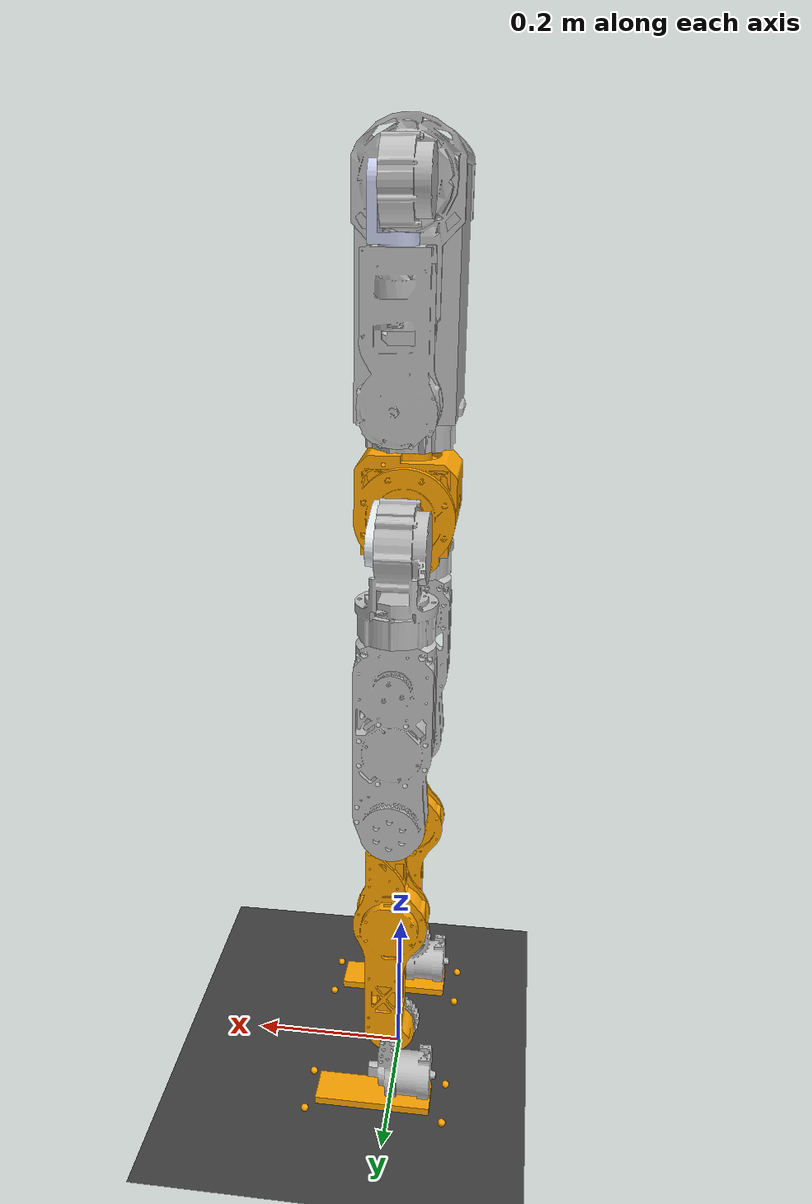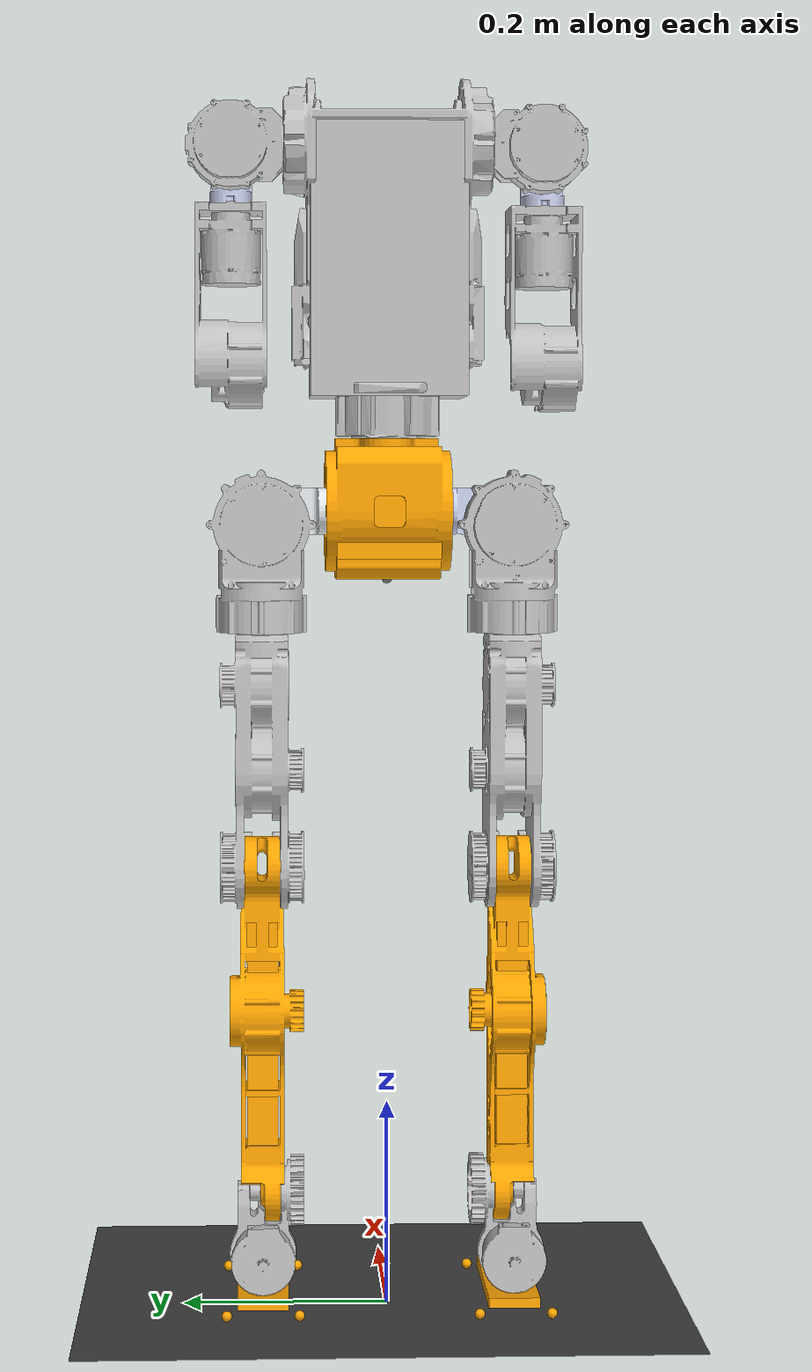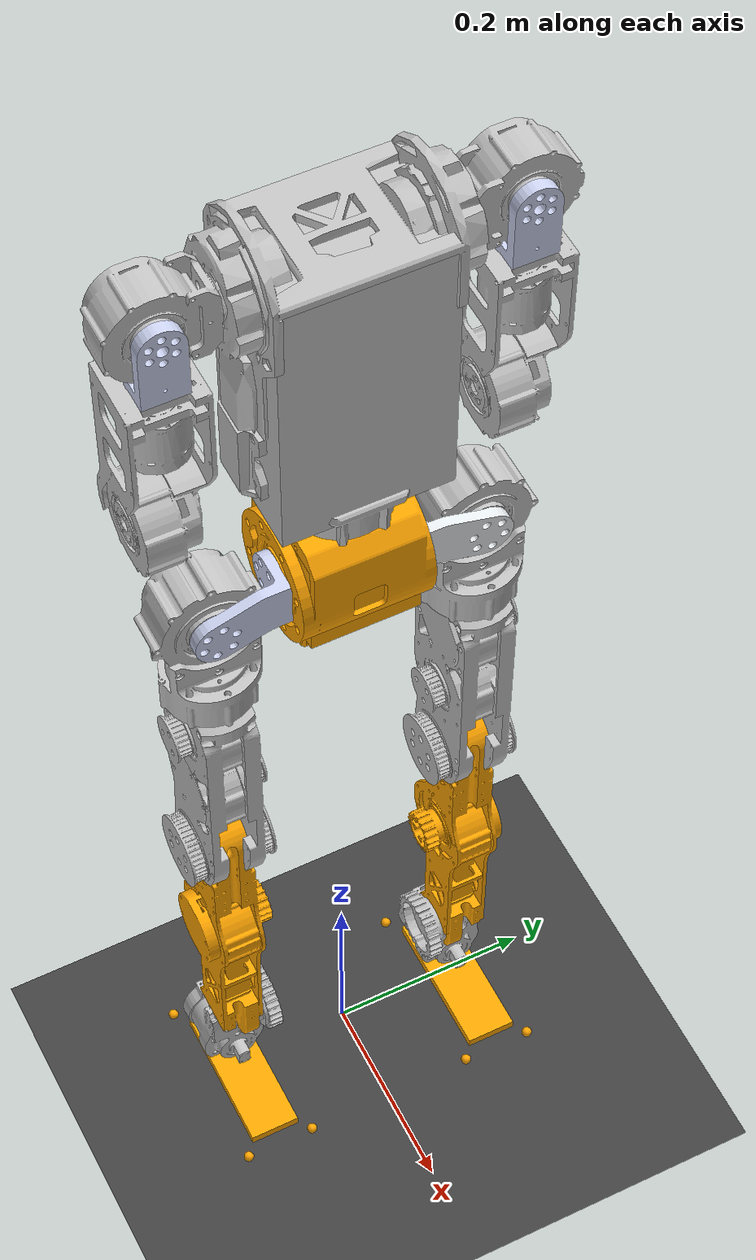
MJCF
<mujoco model="E1_v2">
  <compiler angle="radian" meshdir="../meshes"/>
  <statistic meansize="0.177939" extent="1.9618" center="0.0465088 1.93584e-06 -0.21519"/>
  <default>
    <joint damping="0.01" armature="0.01" frictionloss="0.01"/>
  </default>
  <asset>
    <texture type="skybox" builtin="gradient" width="128" height="128" rgb1="0.4 0.6 0.8" rgb2="0 0 0"/>
    <texture name="plane" type="2d" builtin="checker" rgb1="0.2 0.2 0.2" rgb2="0.3 0.3 0.3" width="512"
              height="512"/>
    <material name="plane" reflectance="0.0" texture="plane" texrepeat="1 1" texuniform="true"/>
    <mesh name="pelvis" file="pelvis.STL"/>
    <mesh name="left_hip_pitch_link" file="left_hip_pitch_link.STL"/>
    <mesh name="left_hip_roll_link" file="left_hip_roll_link.STL"/>
    <mesh name="left_hip_yaw_link" file="left_hip_yaw_link.STL"/>
    <mesh name="left_knee_link" file="left_knee_link.STL"/>
    <mesh name="left_ankle_pitch_link" file="left_ankle_pitch_link.STL"/>
    <mesh name="right_hip_pitch_link" file="right_hip_pitch_link.STL"/>
    <mesh name="right_hip_roll_link" file="right_hip_roll_link.STL"/>
    <mesh name="right_hip_yaw_link" file="right_hip_yaw_link.STL"/>
    <mesh name="right_knee_link" file="right_knee_link.STL"/>
    <mesh name="right_ankle_pitch_link" file="right_ankle_pitch_link.STL"/>
    <mesh name="torso_link" file="torso_link.STL"/>
    <mesh name="left_shoulder_pitch_link" file="left_shoulder_pitch_link.STL"/>
    <mesh name="left_shoulder_roll_link" file="left_shoulder_roll_link.STL"/>
    <mesh name="left_shoulder_yaw_link" file="left_shoulder_yaw_link.STL"/>
    <mesh name="right_shoulder_pitch_link" file="right_shoulder_pitch_link.STL"/>
    <mesh name="right_shoulder_roll_link" file="right_shoulder_roll_link.STL"/>
    <mesh name="right_shoulder_yaw_link" file="right_shoulder_yaw_link.STL"/>
  </asset>

  <worldbody>
    <geom name="floor" pos="0.001 0 0" size="100 100 .125" type="plane" material="plane" condim="3"
          conaffinity="15" friction="0.7 0.7 0.001"/>
    <light mode="trackcom" pos="0 0 5" dir="0 0 -1"/>
    <body name="pelvis" pos="0 0 0.715">
      <inertial pos="0.004766 -0.000230112 0.255448" quat="0.999983 -0.00378825 0.00440741 0.000252477" mass="14.45" diaginertia="0.328712 0.215745 0.133607"/>
      <joint name="floating_base_joint" type="free" limited="false" actuatorfrclimited="false"/>
      <geom type="mesh" contype="0" conaffinity="0" group="1" density="0" rgba="1 0.64706 0 1" mesh="pelvis"/>
      <geom size="0.05 0.05 0.05" pos="0 0 0.07" type="box" rgba="1 0.64706 0 1"/>
      <geom pos="0 0 0.135" type="mesh" contype="0" conaffinity="0" group="1" density="0" rgba="0.75294 0.75294 0.75294 1" mesh="torso_link"/>
      <geom size="0.055 0.075 0.13" pos="0 0 0.305" type="box" rgba="0.75294 0.75294 0.75294 1"/>
      <geom pos="0 0.0985 0.415" quat="1 0 0 0" type="mesh" contype="0" conaffinity="0" group="1" density="0" rgba="0.75294 0.75294 0.75294 1" mesh="left_shoulder_pitch_link"/>
      <geom pos="0 0.1505 0.415" type="mesh" contype="0" conaffinity="0" group="1" density="0" rgba="0.79216 0.81961 0.93333 1" mesh="left_shoulder_roll_link"/>
      <geom pos="0 0.1505 0.358" quat="1 0 0 0" type="mesh" contype="0" conaffinity="0" group="1" density="0" rgba="0.75294 0.75294 0.75294 1" mesh="left_shoulder_yaw_link"/>
      <geom pos="0 -0.0985 0.415" quat="1 0 0 0" type="mesh" contype="0" conaffinity="0" group="1" density="0" rgba="0.75294 0.75294 0.75294 1" mesh="right_shoulder_pitch_link"/>
      <geom pos="0 -0.150404 0.412192" type="mesh" contype="0" conaffinity="0" group="1" density="0" rgba="0.79216 0.81961 0.93333 1" mesh="right_shoulder_roll_link"/>
      <geom pos="0 -0.150404 0.355192" type="mesh" contype="0" conaffinity="0" group="1" density="0" rgba="0.75294 0.75294 0.75294 1" mesh="right_shoulder_yaw_link"/>
      <site name="imu" pos="0 0 -0.00"/>
      <body name="left_hip_pitch_link" pos="0 0.057 0.065">
        <inertial pos="0.020044 0.0301526 -0.00422561" quat="0.627234 0.686462 0.353637 -0.101436" mass="0.18" diaginertia="0.000177793 0.000150738 5.17688e-05"/>
        <joint name="left_hip_pitch_joint" pos="0 0 0" axis="0 1 0" range="-2.7053 2.7053" actuatorfrcrange="-60 60"/>
        <geom type="mesh" contype="0" conaffinity="0" group="1" density="0" rgba="0.89804 0.91765 0.92941 1" mesh="left_hip_pitch_link"/>
        <body name="left_hip_roll_link" pos="0 0.065 -0.013057">
          <inertial pos="-0.00068638 -5.009e-05 -0.0357735" quat="0.999944 0.00308008 0.00965317 -0.00314352" mass="1.665" diaginertia="0.00409391 0.00387212 0.00178131"/>
          <joint name="left_hip_roll_joint" pos="0 0 0" axis="1 0 0" range="-0.5236 3.1416" actuatorfrcrange="-60 60"/>
          <geom type="mesh" contype="0" conaffinity="0" group="1" density="0" rgba="0.75294 0.75294 0.75294 1" mesh="left_hip_roll_link"/>
          <body name="left_hip_yaw_link" pos="0 0 -0.106">
            <inertial pos="0.00068457 -7.417e-05 -0.123295" quat="0.704428 0.0135549 0.00294679 0.70964" mass="2.055" diaginertia="0.0141754 0.0138037 0.00232509"/>
            <joint name="left_hip_yaw_joint" pos="0 0 0" axis="0 0 1" range="-2.0944 2.0944" actuatorfrcrange="-36 36"/>
            <geom type="mesh" contype="0" conaffinity="0" group="1" density="0" rgba="0.75294 0.75294 0.75294 1" mesh="left_hip_yaw_link"/>
            <body name="left_knee_link" pos="0 0 -0.228">
              <inertial pos="0.00371192 -0.00097881 -0.156429" quat="0.714688 0.000482624 -0.00500608 0.699426" mass="1.4" diaginertia="0.0153519 0.0151967 0.000832227"/>
              <joint name="left_knee_joint" pos="0 0 0" axis="0 1 0" range="0 2.2689" actuatorfrcrange="-59.3 59.3"/>
              <geom type="mesh" contype="0" conaffinity="0" group="1" density="0" rgba="1 0.64706 0 1" mesh="left_knee_link"/>
              <geom size="0.015 0.015 0.13" pos="0 0 -0.16" type="box" rgba="1 0.64706 0 1"/>
              <body name="left_ankle_pitch_link" pos="0 0 -0.32">
                <inertial pos="-0.0109096 -0.00574639 -0.0370866" quat="0.440961 -0.20841 0.0425785 0.871955" mass="0.785" diaginertia="0.00124346 0.00101122 0.000536033"/>
                <joint name="left_ankle_pitch_joint" pos="0 0 0" axis="0 1 0" range="-0.5236 0.5236" actuatorfrcrange="-59.3 59.3"/>
                <geom type="mesh" contype="0" conaffinity="0" group="1" density="0" rgba="0.75294 0.75294 0.75294 1" mesh="left_ankle_pitch_link"/>
                <body name="left_ankle_roll_link" pos="0 0 -0.06">
                  <inertial pos="0.0123494 -6.993e-05 -0.0320654" quat="-0.000493007 0.69858 -0.00216045 0.715529" mass="0.275" diaginertia="0.000792703 0.000716452 0.000128165"/>
                  <joint name="left_ankle_roll_joint" pos="0 0 0" axis="1 0 0" range="-1.5708 1.5708" actuatorfrcrange="-14 14"/>
                  <geom size="0.075 0.025 0.005" pos="0.02 0 -0.04" type="box" contype="0" conaffinity="0" group="1" density="0" rgba="1 0.64706 0 1"/>
                  <geom size="0.075 0.025 0.005" pos="0.02 0 -0.04" type="box" rgba="1 0.64706 0 1"/>
                  <geom size="0.005" pos="0.107 0.035 -0.045" rgba="1 0.64706 0 1"/>
                  <geom size="0.005" pos="0.107 -0.035 -0.045" rgba="1 0.64706 0 1"/>
                  <geom size="0.005" pos="-0.073 0.035 -0.045" rgba="1 0.64706 0 1"/>
                  <geom size="0.005" pos="-0.073 -0.035 -0.045" rgba="1 0.64706 0 1"/>
                </body>
              </body>
            </body>
          </body>
        </body>
      </body>
      <body name="right_hip_pitch_link" pos="0 -0.057 0.065">
        <inertial pos="0.020044 -0.0301526 -0.00422561" quat="0.686462 0.627234 0.101436 -0.353637" mass="0.18" diaginertia="0.000177793 0.000150738 5.17688e-05"/>
        <joint name="right_hip_pitch_joint" pos="0 0 0" axis="0 1 0" range="-2.7053 2.7053" actuatorfrcrange="-60 60"/>
        <geom type="mesh" contype="0" conaffinity="0" group="1" density="0" rgba="0.79216 0.81961 0.93333 1" mesh="right_hip_pitch_link"/>
        <body name="right_hip_roll_link" pos="0 -0.065 -0.013057">
          <inertial pos="-0.00068634 5.01e-05 -0.0357735" quat="0.999947 -0.00313967 0.00963826 -0.00195039" mass="1.665" diaginertia="0.00409389 0.00387212 0.00178131"/>
          <joint name="right_hip_roll_joint" pos="0 0 0" axis="1 0 0" range="-3.1416 0.5236" actuatorfrcrange="-60 60"/>
          <geom type="mesh" contype="0" conaffinity="0" group="1" density="0" rgba="0.75294 0.75294 0.75294 1" mesh="right_hip_roll_link"/>
          <body name="right_hip_yaw_link" pos="0 0 -0.106">
            <inertial pos="0.00068454 7.42e-05 -0.123295" quat="0.70964 0.0029471 0.0135552 0.704428" mass="2.0055" diaginertia="0.0141754 0.0138037 0.00232509"/>
            <joint name="right_hip_yaw_joint" pos="0 0 0" axis="0 0 1" range="-2.0944 2.0944" actuatorfrcrange="-36 36"/>
            <geom type="mesh" contype="0" conaffinity="0" group="1" density="0" rgba="0.75294 0.75294 0.75294 1" mesh="right_hip_yaw_link"/>
            <body name="right_knee_link" pos="0 0 -0.228">
              <inertial pos="0.00371191 0.0009788 -0.156429" quat="0.699426 -0.00500584 0.000482867 0.714687" mass="1.4" diaginertia="0.0153519 0.0151967 0.000832227"/>
              <joint name="right_knee_joint" pos="0 0 0" axis="0 1 0" range="0 2.2689" actuatorfrcrange="-59.3 59.3"/>
              <geom type="mesh" contype="0" conaffinity="0" group="1" density="0" rgba="1 0.64706 0 1" mesh="right_knee_link"/>
              <geom size="0.015 0.015 0.13" pos="0 0 -0.16" type="box" rgba="1 0.64706 0 1"/>
              <body name="right_ankle_pitch_link" pos="0 0 -0.32">
                <inertial pos="-0.0109096 0.00574639 -0.0370867" quat="0.871955 0.0425785 -0.20841 0.440961" mass="0.785" diaginertia="0.00124346 0.00101122 0.000536033"/>
                <joint name="right_ankle_pitch_joint" pos="0 0 0" axis="0 1 0" range="-0.5236 0.5236" actuatorfrcrange="-59.3 59.3"/>
                <geom type="mesh" contype="0" conaffinity="0" group="1" density="0" rgba="0.75294 0.75294 0.75294 1" mesh="right_ankle_pitch_link"/>
                <body name="right_ankle_roll_link" pos="0 0 -0.06">
                  <inertial pos="0.0123494 6.993e-05 -0.0320654" quat="0.000493007 0.69858 0.00216045 0.715529" mass="0.275" diaginertia="0.000792703 0.000716452 0.000128165"/>
                  <joint name="right_ankle_roll_joint" pos="0 0 0" axis="1 0 0" range="-1.5708 1.5708" actuatorfrcrange="-14 14"/>
                  <geom size="0.075 0.025 0.005" pos="0.02 0 -0.04" type="box" contype="0" conaffinity="0" group="1" density="0" rgba="1 0.64706 0 1"/>
                  <geom size="0.075 0.025 0.005" pos="0.02 0 -0.04" type="box" rgba="1 0.64706 0 1"/>
                  <geom size="0.005" pos="0.107 0.035 -0.045" rgba="1 0.64706 0 1"/>
                  <geom size="0.005" pos="0.107 -0.035 -0.045" rgba="1 0.64706 0 1"/>
                  <geom size="0.005" pos="-0.073 0.035 -0.045" rgba="1 0.64706 0 1"/>
                  <geom size="0.005" pos="-0.073 -0.035 -0.045" rgba="1 0.64706 0 1"/>
                </body>
              </body>
            </body>
          </body>
        </body>
      </body>
    </body>
  </worldbody>
  <actuator>
    <motor name="left_hip_pitch_joint"   joint="left_hip_pitch_joint"   /> <!-- Leg Left -->
    <motor name="left_hip_roll_joint"    joint="left_hip_roll_joint"    />
    <motor name="left_hip_yaw_joint"     joint="left_hip_yaw_joint"     />
    <motor name="left_knee_joint"        joint="left_knee_joint"  />
    <motor name="left_ankle_pitch_joint" joint="left_ankle_pitch_joint" />
    <motor name="left_ankle_roll_joint"  joint="left_ankle_roll_joint"  />

    <motor name="right_hip_pitch_joint"   joint="right_hip_pitch_joint"   /> <!-- Right Left -->
    <motor name="right_hip_roll_joint"    joint="right_hip_roll_joint"    />
    <motor name="right_hip_yaw_joint"     joint="right_hip_yaw_joint"     />
    <motor name="right_knee_joint"        joint="right_knee_joint"  />
    <motor name="right_ankle_pitch_joint" joint="right_ankle_pitch_joint" />
    <motor name="right_ankle_roll_joint"  joint="right_ankle_roll_joint"  />
  </actuator>
  <sensor>
    <!-- 身体的的姿态 -->
    <gyro          name="gyro"    site='imu' noise='0.005' cutoff='34.9'/>
    <accelerometer name="acc"     site='imu' noise='0.005' cutoff='157'/>
    <framequat     name='bq'      objtype='site' noise='0.001' objname='imu'/>
    <framelinvel   name="blv"  objtype='site' objname='imu'/>
  </sensor>
</mujoco>
